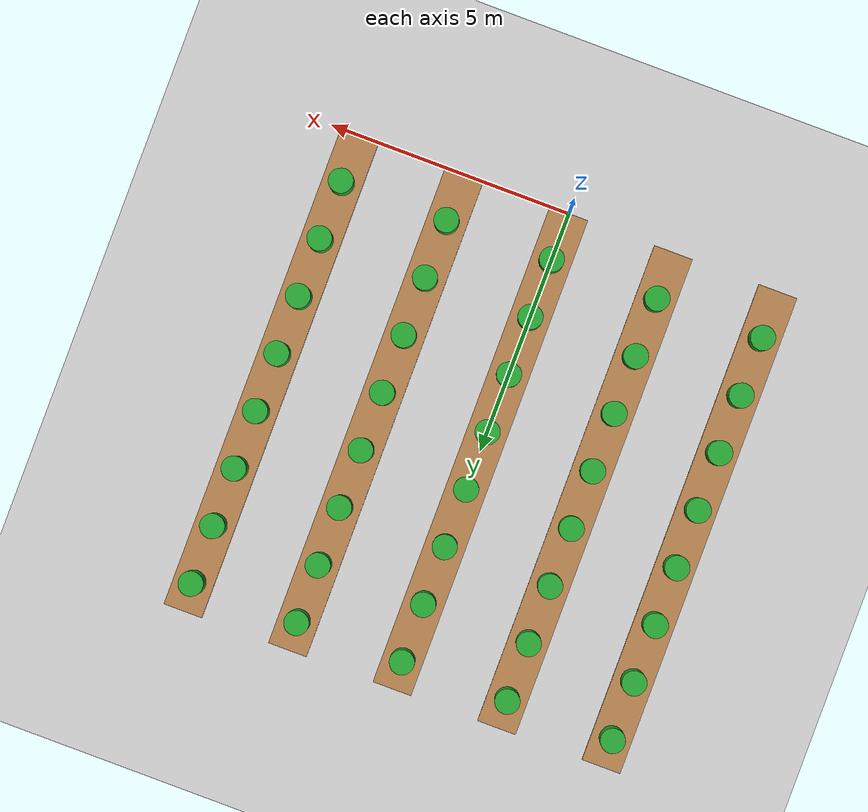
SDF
<?xml version="1.0" ?>
<sdf version="1.4">
  <world name="default">
    <!-- Ánh sáng và mặt đất -->
    <include><uri>model://sun</uri></include>
    <include><uri>model://ground_plane</uri></include>

    <!-- LUỐNG 1: X = -4.4m -->
    <model name="bed_and_trees_1">
      <static>true</static>
      <link name="bed_1">
        <pose>-4.4 5.0 0.05 0 0 0</pose>
        <collision name="c"><geometry><box><size>0.8 10.0 0.1</size></box></geometry></collision>
        <visual name="v">
          <geometry><box><size>0.8 10.0 0.1</size></box></geometry>
          <material><script><uri>file://media/materials/scripts/gazebo.material</uri><name>Gazebo/Wood</name></script></material>
        </visual>
      </link>
      <link name="t_1_1"><pose>-4.4 1.0 0.5 0 0 0</pose><collision name="c"><geometry><cylinder><radius>0.25</radius><length>0.8</length></cylinder></geometry></collision><visual name="v"><geometry><cylinder><radius>0.25</radius><length>0.8</length></cylinder></geometry><material><script><uri>file://media/materials/scripts/gazebo.material</uri><name>Gazebo/Green</name></script></material></visual></link>
      <link name="t_1_2"><pose>-4.4 2.2 0.5 0 0 0</pose><collision name="c"><geometry><cylinder><radius>0.25</radius><length>0.8</length></cylinder></geometry></collision><visual name="v"><geometry><cylinder><radius>0.25</radius><length>0.8</length></cylinder></geometry><material><script><uri>file://media/materials/scripts/gazebo.material</uri><name>Gazebo/Green</name></script></material></visual></link>
      <link name="t_1_3"><pose>-4.4 3.4 0.5 0 0 0</pose><collision name="c"><geometry><cylinder><radius>0.25</radius><length>0.8</length></cylinder></geometry></collision><visual name="v"><geometry><cylinder><radius>0.25</radius><length>0.8</length></cylinder></geometry><material><script><uri>file://media/materials/scripts/gazebo.material</uri><name>Gazebo/Green</name></script></material></visual></link>
      <link name="t_1_4"><pose>-4.4 4.6 0.5 0 0 0</pose><collision name="c"><geometry><cylinder><radius>0.25</radius><length>0.8</length></cylinder></geometry></collision><visual name="v"><geometry><cylinder><radius>0.25</radius><length>0.8</length></cylinder></geometry><material><script><uri>file://media/materials/scripts/gazebo.material</uri><name>Gazebo/Green</name></script></material></visual></link>
      <link name="t_1_5"><pose>-4.4 5.8 0.5 0 0 0</pose><collision name="c"><geometry><cylinder><radius>0.25</radius><length>0.8</length></cylinder></geometry></collision><visual name="v"><geometry><cylinder><radius>0.25</radius><length>0.8</length></cylinder></geometry><material><script><uri>file://media/materials/scripts/gazebo.material</uri><name>Gazebo/Green</name></script></material></visual></link>
      <link name="t_1_6"><pose>-4.4 7.0 0.5 0 0 0</pose><collision name="c"><geometry><cylinder><radius>0.25</radius><length>0.8</length></cylinder></geometry></collision><visual name="v"><geometry><cylinder><radius>0.25</radius><length>0.8</length></cylinder></geometry><material><script><uri>file://media/materials/scripts/gazebo.material</uri><name>Gazebo/Green</name></script></material></visual></link>
      <link name="t_1_7"><pose>-4.4 8.2 0.5 0 0 0</pose><collision name="c"><geometry><cylinder><radius>0.25</radius><length>0.8</length></cylinder></geometry></collision><visual name="v"><geometry><cylinder><radius>0.25</radius><length>0.8</length></cylinder></geometry><material><script><uri>file://media/materials/scripts/gazebo.material</uri><name>Gazebo/Green</name></script></material></visual></link>
      <link name="t_1_8"><pose>-4.4 9.4 0.5 0 0 0</pose><collision name="c"><geometry><cylinder><radius>0.25</radius><length>0.8</length></cylinder></geometry></collision><visual name="v"><geometry><cylinder><radius>0.25</radius><length>0.8</length></cylinder></geometry><material><script><uri>file://media/materials/scripts/gazebo.material</uri><name>Gazebo/Green</name></script></material></visual></link>
    </model>

    <!-- LUỐNG 2: X = -2.2m -->
    <model name="bed_and_trees_2">
      <static>true</static>
      <link name="bed_2">
        <pose>-2.2 5.0 0.05 0 0 0</pose>
        <collision name="c"><geometry><box><size>0.8 10.0 0.1</size></box></geometry></collision>
        <visual name="v">
          <geometry><box><size>0.8 10.0 0.1</size></box></geometry>
          <material><script><uri>file://media/materials/scripts/gazebo.material</uri><name>Gazebo/Wood</name></script></material>
        </visual>
      </link>
      <link name="t_2_1"><pose>-2.2 1.0 0.5 0 0 0</pose><collision name="c"><geometry><cylinder><radius>0.25</radius><length>0.8</length></cylinder></geometry></collision><visual name="v"><geometry><cylinder><radius>0.25</radius><length>0.8</length></cylinder></geometry><material><script><uri>file://media/materials/scripts/gazebo.material</uri><name>Gazebo/Green</name></script></material></visual></link>
      <link name="t_2_2"><pose>-2.2 2.2 0.5 0 0 0</pose><collision name="c"><geometry><cylinder><radius>0.25</radius><length>0.8</length></cylinder></geometry></collision><visual name="v"><geometry><cylinder><radius>0.25</radius><length>0.8</length></cylinder></geometry><material><script><uri>file://media/materials/scripts/gazebo.material</uri><name>Gazebo/Green</name></script></material></visual></link>
      <link name="t_2_3"><pose>-2.2 3.4 0.5 0 0 0</pose><collision name="c"><geometry><cylinder><radius>0.25</radius><length>0.8</length></cylinder></geometry></collision><visual name="v"><geometry><cylinder><radius>0.25</radius><length>0.8</length></cylinder></geometry><material><script><uri>file://media/materials/scripts/gazebo.material</uri><name>Gazebo/Green</name></script></material></visual></link>
      <link name="t_2_4"><pose>-2.2 4.6 0.5 0 0 0</pose><collision name="c"><geometry><cylinder><radius>0.25</radius><length>0.8</length></cylinder></geometry></collision><visual name="v"><geometry><cylinder><radius>0.25</radius><length>0.8</length></cylinder></geometry><material><script><uri>file://media/materials/scripts/gazebo.material</uri><name>Gazebo/Green</name></script></material></visual></link>
      <link name="t_2_5"><pose>-2.2 5.8 0.5 0 0 0</pose><collision name="c"><geometry><cylinder><radius>0.25</radius><length>0.8</length></cylinder></geometry></collision><visual name="v"><geometry><cylinder><radius>0.25</radius><length>0.8</length></cylinder></geometry><material><script><uri>file://media/materials/scripts/gazebo.material</uri><name>Gazebo/Green</name></script></material></visual></link>
      <link name="t_2_6"><pose>-2.2 7.0 0.5 0 0 0</pose><collision name="c"><geometry><cylinder><radius>0.25</radius><length>0.8</length></cylinder></geometry></collision><visual name="v"><geometry><cylinder><radius>0.25</radius><length>0.8</length></cylinder></geometry><material><script><uri>file://media/materials/scripts/gazebo.material</uri><name>Gazebo/Green</name></script></material></visual></link>
      <link name="t_2_7"><pose>-2.2 8.2 0.5 0 0 0</pose><collision name="c"><geometry><cylinder><radius>0.25</radius><length>0.8</length></cylinder></geometry></collision><visual name="v"><geometry><cylinder><radius>0.25</radius><length>0.8</length></cylinder></geometry><material><script><uri>file://media/materials/scripts/gazebo.material</uri><name>Gazebo/Green</name></script></material></visual></link>
      <link name="t_2_8"><pose>-2.2 9.4 0.5 0 0 0</pose><collision name="c"><geometry><cylinder><radius>0.25</radius><length>0.8</length></cylinder></geometry></collision><visual name="v"><geometry><cylinder><radius>0.25</radius><length>0.8</length></cylinder></geometry><material><script><uri>file://media/materials/scripts/gazebo.material</uri><name>Gazebo/Green</name></script></material></visual></link>
    </model>

    <!-- LUỐNG 3: X = 0.0m -->
    <model name="bed_and_trees_3">
      <static>true</static>
      <link name="bed_3">
        <pose>0.0 5.0 0.05 0 0 0</pose>
        <collision name="c"><geometry><box><size>0.8 10.0 0.1</size></box></geometry></collision>
        <visual name="v">
          <geometry><box><size>0.8 10.0 0.1</size></box></geometry>
          <material><script><uri>file://media/materials/scripts/gazebo.material</uri><name>Gazebo/Wood</name></script></material>
        </visual>
      </link>
      <link name="t_3_1"><pose>0.0 1.0 0.5 0 0 0</pose><collision name="c"><geometry><cylinder><radius>0.25</radius><length>0.8</length></cylinder></geometry></collision><visual name="v"><geometry><cylinder><radius>0.25</radius><length>0.8</length></cylinder></geometry><material><script><uri>file://media/materials/scripts/gazebo.material</uri><name>Gazebo/Green</name></script></material></visual></link>
      <link name="t_3_2"><pose>0.0 2.2 0.5 0 0 0</pose><collision name="c"><geometry><cylinder><radius>0.25</radius><length>0.8</length></cylinder></geometry></collision><visual name="v"><geometry><cylinder><radius>0.25</radius><length>0.8</length></cylinder></geometry><material><script><uri>file://media/materials/scripts/gazebo.material</uri><name>Gazebo/Green</name></script></material></visual></link>
      <link name="t_3_3"><pose>0.0 3.4 0.5 0 0 0</pose><collision name="c"><geometry><cylinder><radius>0.25</radius><length>0.8</length></cylinder></geometry></collision><visual name="v"><geometry><cylinder><radius>0.25</radius><length>0.8</length></cylinder></geometry><material><script><uri>file://media/materials/scripts/gazebo.material</uri><name>Gazebo/Green</name></script></material></visual></link>
      <link name="t_3_4"><pose>0.0 4.6 0.5 0 0 0</pose><collision name="c"><geometry><cylinder><radius>0.25</radius><length>0.8</length></cylinder></geometry></collision><visual name="v"><geometry><cylinder><radius>0.25</radius><length>0.8</length></cylinder></geometry><material><script><uri>file://media/materials/scripts/gazebo.material</uri><name>Gazebo/Green</name></script></material></visual></link>
      <link name="t_3_5"><pose>0.0 5.8 0.5 0 0 0</pose><collision name="c"><geometry><cylinder><radius>0.25</radius><length>0.8</length></cylinder></geometry></collision><visual name="v"><geometry><cylinder><radius>0.25</radius><length>0.8</length></cylinder></geometry><material><script><uri>file://media/materials/scripts/gazebo.material</uri><name>Gazebo/Green</name></script></material></visual></link>
      <link name="t_3_6"><pose>0.0 7.0 0.5 0 0 0</pose><collision name="c"><geometry><cylinder><radius>0.25</radius><length>0.8</length></cylinder></geometry></collision><visual name="v"><geometry><cylinder><radius>0.25</radius><length>0.8</length></cylinder></geometry><material><script><uri>file://media/materials/scripts/gazebo.material</uri><name>Gazebo/Green</name></script></material></visual></link>
      <link name="t_3_7"><pose>0.0 8.2 0.5 0 0 0</pose><collision name="c"><geometry><cylinder><radius>0.25</radius><length>0.8</length></cylinder></geometry></collision><visual name="v"><geometry><cylinder><radius>0.25</radius><length>0.8</length></cylinder></geometry><material><script><uri>file://media/materials/scripts/gazebo.material</uri><name>Gazebo/Green</name></script></material></visual></link>
      <link name="t_3_8"><pose>0.0 9.4 0.5 0 0 0</pose><collision name="c"><geometry><cylinder><radius>0.25</radius><length>0.8</length></cylinder></geometry></collision><visual name="v"><geometry><cylinder><radius>0.25</radius><length>0.8</length></cylinder></geometry><material><script><uri>file://media/materials/scripts/gazebo.material</uri><name>Gazebo/Green</name></script></material></visual></link>
    </model>

    <!-- LUỐNG 4: X = 2.2m -->
    <model name="bed_and_trees_4">
      <static>true</static>
      <link name="bed_4">
        <pose>2.2 5.0 0.05 0 0 0</pose>
        <collision name="c"><geometry><box><size>0.8 10.0 0.1</size></box></geometry></collision>
        <visual name="v">
          <geometry><box><size>0.8 10.0 0.1</size></box></geometry>
          <material><script><uri>file://media/materials/scripts/gazebo.material</uri><name>Gazebo/Wood</name></script></material>
        </visual>
      </link>
      <link name="t_4_1"><pose>2.2 1.0 0.5 0 0 0</pose><collision name="c"><geometry><cylinder><radius>0.25</radius><length>0.8</length></cylinder></geometry></collision><visual name="v"><geometry><cylinder><radius>0.25</radius><length>0.8</length></cylinder></geometry><material><script><uri>file://media/materials/scripts/gazebo.material</uri><name>Gazebo/Green</name></script></material></visual></link>
      <link name="t_4_2"><pose>2.2 2.2 0.5 0 0 0</pose><collision name="c"><geometry><cylinder><radius>0.25</radius><length>0.8</length></cylinder></geometry></collision><visual name="v"><geometry><cylinder><radius>0.25</radius><length>0.8</length></cylinder></geometry><material><script><uri>file://media/materials/scripts/gazebo.material</uri><name>Gazebo/Green</name></script></material></visual></link>
      <link name="t_4_3"><pose>2.2 3.4 0.5 0 0 0</pose><collision name="c"><geometry><cylinder><radius>0.25</radius><length>0.8</length></cylinder></geometry></collision><visual name="v"><geometry><cylinder><radius>0.25</radius><length>0.8</length></cylinder></geometry><material><script><uri>file://media/materials/scripts/gazebo.material</uri><name>Gazebo/Green</name></script></material></visual></link>
      <link name="t_4_4"><pose>2.2 4.6 0.5 0 0 0</pose><collision name="c"><geometry><cylinder><radius>0.25</radius><length>0.8</length></cylinder></geometry></collision><visual name="v"><geometry><cylinder><radius>0.25</radius><length>0.8</length></cylinder></geometry><material><script><uri>file://media/materials/scripts/gazebo.material</uri><name>Gazebo/Green</name></script></material></visual></link>
      <link name="t_4_5"><pose>2.2 5.8 0.5 0 0 0</pose><collision name="c"><geometry><cylinder><radius>0.25</radius><length>0.8</length></cylinder></geometry></collision><visual name="v"><geometry><cylinder><radius>0.25</radius><length>0.8</length></cylinder></geometry><material><script><uri>file://media/materials/scripts/gazebo.material</uri><name>Gazebo/Green</name></script></material></visual></link>
      <link name="t_4_6"><pose>2.2 7.0 0.5 0 0 0</pose><collision name="c"><geometry><cylinder><radius>0.25</radius><length>0.8</length></cylinder></geometry></collision><visual name="v"><geometry><cylinder><radius>0.25</radius><length>0.8</length></cylinder></geometry><material><script><uri>file://media/materials/scripts/gazebo.material</uri><name>Gazebo/Green</name></script></material></visual></link>
      <link name="t_4_7"><pose>2.2 8.2 0.5 0 0 0</pose><collision name="c"><geometry><cylinder><radius>0.25</radius><length>0.8</length></cylinder></geometry></collision><visual name="v"><geometry><cylinder><radius>0.25</radius><length>0.8</length></cylinder></geometry><material><script><uri>file://media/materials/scripts/gazebo.material</uri><name>Gazebo/Green</name></script></material></visual></link>
      <link name="t_4_8"><pose>2.2 9.4 0.5 0 0 0</pose><collision name="c"><geometry><cylinder><radius>0.25</radius><length>0.8</length></cylinder></geometry></collision><visual name="v"><geometry><cylinder><radius>0.25</radius><length>0.8</length></cylinder></geometry><material><script><uri>file://media/materials/scripts/gazebo.material</uri><name>Gazebo/Green</name></script></material></visual></link>
    </model>

    <!-- LUỐNG 5: X = 4.4m -->
    <model name="bed_and_trees_5">
      <static>true</static>
      <link name="bed_5">
        <pose>4.4 5.0 0.05 0 0 0</pose>
        <collision name="c"><geometry><box><size>0.8 10.0 0.1</size></box></geometry></collision>
        <visual name="v">
          <geometry><box><size>0.8 10.0 0.1</size></box></geometry>
          <material><script><uri>file://media/materials/scripts/gazebo.material</uri><name>Gazebo/Wood</name></script></material>
        </visual>
      </link>
      <link name="t_5_1"><pose>4.4 1.0 0.5 0 0 0</pose><collision name="c"><geometry><cylinder><radius>0.25</radius><length>0.8</length></cylinder></geometry></collision><visual name="v"><geometry><cylinder><radius>0.25</radius><length>0.8</length></cylinder></geometry><material><script><uri>file://media/materials/scripts/gazebo.material</uri><name>Gazebo/Green</name></script></material></visual></link>
      <link name="t_5_2"><pose>4.4 2.2 0.5 0 0 0</pose><collision name="c"><geometry><cylinder><radius>0.25</radius><length>0.8</length></cylinder></geometry></collision><visual name="v"><geometry><cylinder><radius>0.25</radius><length>0.8</length></cylinder></geometry><material><script><uri>file://media/materials/scripts/gazebo.material</uri><name>Gazebo/Green</name></script></material></visual></link>
      <link name="t_5_3"><pose>4.4 3.4 0.5 0 0 0</pose><collision name="c"><geometry><cylinder><radius>0.25</radius><length>0.8</length></cylinder></geometry></collision><visual name="v"><geometry><cylinder><radius>0.25</radius><length>0.8</length></cylinder></geometry><material><script><uri>file://media/materials/scripts/gazebo.material</uri><name>Gazebo/Green</name></script></material></visual></link>
      <link name="t_5_4"><pose>4.4 4.6 0.5 0 0 0</pose><collision name="c"><geometry><cylinder><radius>0.25</radius><length>0.8</length></cylinder></geometry></collision><visual name="v"><geometry><cylinder><radius>0.25</radius><length>0.8</length></cylinder></geometry><material><script><uri>file://media/materials/scripts/gazebo.material</uri><name>Gazebo/Green</name></script></material></visual></link>
      <link name="t_5_5"><pose>4.4 5.8 0.5 0 0 0</pose><collision name="c"><geometry><cylinder><radius>0.25</radius><length>0.8</length></cylinder></geometry></collision><visual name="v"><geometry><cylinder><radius>0.25</radius><length>0.8</length></cylinder></geometry><material><script><uri>file://media/materials/scripts/gazebo.material</uri><name>Gazebo/Green</name></script></material></visual></link>
      <link name="t_5_6"><pose>4.4 7.0 0.5 0 0 0</pose><collision name="c"><geometry><cylinder><radius>0.25</radius><length>0.8</length></cylinder></geometry></collision><visual name="v"><geometry><cylinder><radius>0.25</radius><length>0.8</length></cylinder></geometry><material><script><uri>file://media/materials/scripts/gazebo.material</uri><name>Gazebo/Green</name></script></material></visual></link>
      <link name="t_5_7"><pose>4.4 8.2 0.5 0 0 0</pose><collision name="c"><geometry><cylinder><radius>0.25</radius><length>0.8</length></cylinder></geometry></collision><visual name="v"><geometry><cylinder><radius>0.25</radius><length>0.8</length></cylinder></geometry><material><script><uri>file://media/materials/scripts/gazebo.material</uri><name>Gazebo/Green</name></script></material></visual></link>
      <link name="t_5_8"><pose>4.4 9.4 0.5 0 0 0</pose><collision name="c"><geometry><cylinder><radius>0.25</radius><length>0.8</length></cylinder></geometry></collision><visual name="v"><geometry><cylinder><radius>0.25</radius><length>0.8</length></cylinder></geometry><material><script><uri>file://media/materials/scripts/gazebo.material</uri><name>Gazebo/Green</name></script></material></visual></link>
    </model>

  </world>
</sdf>
